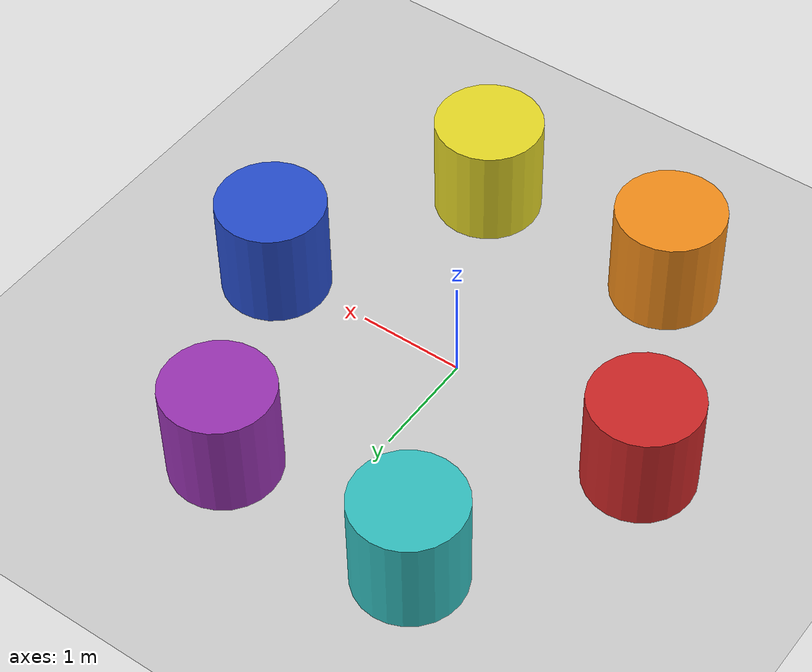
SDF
<sdf version="1.6">
 <world name="default">
  <light name="sun" type="directional">
   <pose>0 0 10 0 -0 0</pose>
   <diffuse>0.8 0.8 0.8 1</diffuse>
   <specular>0.2 0.2 0.2 1</specular>
   <attenuation>
    <range>1000</range>
    <constant>0.9</constant>
    <linear>0.01</linear>
    <quadratic>0.001</quadratic>
   </attenuation>
   <direction>-0.5 0.1 -0.9</direction>
  </light>
  <model name="ground_plane">
   <static>1</static>
   <link name="link">
    <collision name="collision">
     <geometry><plane><normal>0 0 1</normal><size>100 100</size></plane></geometry>
     <surface>
      <contact><collide_bitmask>65535</collide_bitmask></contact>
      <friction><ode><mu>100</mu><mu2>50</mu2></ode></friction>
     </surface>
    </collision>
    <visual name="visual">
     <cast_shadows>0</cast_shadows>
     <geometry><plane><normal>0 0 1</normal><size>100 100</size></plane></geometry>
     <material>
      <script><uri>file://media/materials/scripts/gazebo.material</uri><name>Gazebo/Grey</name></script>
     </material>
    </visual>
   </link>
  </model>
  <gravity>0 0 -9.8</gravity>
  <magnetic_field>6e-06 2.3e-05 -4.2e-05</magnetic_field>
  <atmosphere type="adiabatic"/>
  <physics name="default_physics" default="0" type="ode">
   <max_step_size>0.001</max_step_size>
   <real_time_factor>1</real_time_factor>
   <real_time_update_rate>1000</real_time_update_rate>
  </physics>
  <scene><ambient>0.4 0.4 0.4 1</ambient><background>0.7 0.7 0.7 1</background><shadows>1</shadows></scene>
  <audio><device>default</device></audio>
  <spherical_coordinates>
   <surface_model>EARTH_WGS84</surface_model>
   <latitude_deg>0</latitude_deg>
   <longitude_deg>0</longitude_deg>
   <elevation>0</elevation>
   <heading_deg>0</heading_deg>
  </spherical_coordinates>
  <model name="unit_cylinder">
   <static>1</static>
   <pose>0.978177 1.98409 0.499997 3e-06 -4e-06 0</pose>
   <link name="link">
    <inertial>
     <mass>1</mass>
     <inertia><ixx>0.145833</ixx><ixy>0</ixy><ixz>0</ixz><iyy>0.145833</iyy><iyz>0</iyz><izz>0.125</izz></inertia>
    </inertial>
    <collision name="collision">
     <geometry><cylinder><radius>0.5</radius><length>1</length></cylinder></geometry>
    </collision>
    <visual name="visual">
     <geometry><cylinder><radius>0.5</radius><length>1</length></cylinder></geometry>
     <material>
      <script><name>Gazebo/Purple</name><uri>file://media/materials/scripts/gazebo.material</uri></script>
     </material>
    </visual>
   </link>
  </model>
  <model name="unit_cylinder_0">
   <static>1</static>
   <pose>-0.965717 -1.84886 0.499998 3e-06 -4e-06 0</pose>
   <link name="link">
    <inertial>
     <mass>1</mass>
     <inertia><ixx>0.145833</ixx><ixy>0</ixy><ixz>0</ixz><iyy>0.145833</iyy><iyz>0</iyz><izz>0.125</izz></inertia>
    </inertial>
    <collision name="collision">
     <geometry><cylinder><radius>0.5</radius><length>1</length></cylinder></geometry>
    </collision>
    <visual name="visual">
     <geometry><cylinder><radius>0.5</radius><length>1</length></cylinder></geometry>
     <material>
      <script><name>Gazebo/Orange</name><uri>file://media/materials/scripts/gazebo.material</uri></script>
     </material>
    </visual>
   </link>
  </model>
  <model name="unit_cylinder_1">
   <static>1</static>
   <pose>0.961498 -1.85226 0.499992 -3e-06 -4e-06 -0</pose>
   <link name="link">
    <inertial>
     <mass>1</mass>
     <inertia><ixx>0.145833</ixx><ixy>0</ixy><ixz>0</ixz><iyy>0.145833</iyy><iyz>0</iyz><izz>0.125</izz></inertia>
    </inertial>
    <collision name="collision">
     <geometry><cylinder><radius>0.5</radius><length>1</length></cylinder></geometry>
    </collision>
    <visual name="visual">
     <geometry><cylinder><radius>0.5</radius><length>1</length></cylinder></geometry>
     <material>
      <script><name>Gazebo/Yellow</name><uri>file://media/materials/scripts/gazebo.material</uri></script>
     </material>
    </visual>
   </link>
  </model>
  <model name="unit_cylinder_2">
   <static>1</static>
   <pose>1.93772 0.084504 0.499998 3e-06 -3e-06 0</pose>
   <link name="link">
    <inertial>
     <mass>1</mass>
     <inertia><ixx>0.145833</ixx><ixy>0</ixy><ixz>0</ixz><iyy>0.145833</iyy><iyz>0</iyz><izz>0.125</izz></inertia>
    </inertial>
    <collision name="collision">
     <geometry><cylinder><radius>0.5</radius><length>1</length></cylinder></geometry>
    </collision>
    <visual name="visual">
     <geometry><cylinder><radius>0.5</radius><length>1</length></cylinder></geometry>
     <material>
      <script><name>Gazebo/Blue</name><uri>file://media/materials/scripts/gazebo.material</uri></script>
     </material>
    </visual>
   </link>
  </model>
  <model name="unit_cylinder_3">
   <static>1</static>
   <pose>-1.92237 0.083469 0.499993 -3e-06 3e-06 0</pose>
   <link name="link">
    <inertial>
     <mass>1</mass>
     <inertia><ixx>0.145833</ixx><ixy>0</ixy><ixz>0</ixz><iyy>0.145833</iyy><iyz>0</iyz><izz>0.125</izz></inertia>
    </inertial>
    <collision name="collision">
     <geometry><cylinder><radius>0.5</radius><length>1</length></cylinder></geometry>
    </collision>
    <visual name="visual">
     <geometry><cylinder><radius>0.5</radius><length>1</length></cylinder></geometry>
     <material>
      <script><name>Gazebo/Red</name><uri>file://media/materials/scripts/gazebo.material</uri></script>
     </material>
    </visual>
   </link>
  </model>
  <model name="unit_cylinder_4">
   <static>1</static>
   <pose>-0.961635 2.01846 0.499993 -3e-06 -3e-06 0</pose>
   <link name="link">
    <inertial>
     <mass>1</mass>
     <inertia><ixx>0.145833</ixx><ixy>0</ixy><ixz>0</ixz><iyy>0.145833</iyy><iyz>0</iyz><izz>0.125</izz></inertia>
    </inertial>
    <collision name="collision">
     <geometry><cylinder><radius>0.5</radius><length>1</length></cylinder></geometry>
    </collision>
    <visual name="visual">
     <geometry><cylinder><radius>0.5</radius><length>1</length></cylinder></geometry>
     <material>
      <script><name>Gazebo/Turquoise</name><uri>file://media/materials/scripts/gazebo.material</uri></script>
     </material>
    </visual>
   </link>
  </model>
 </world>
</sdf>
